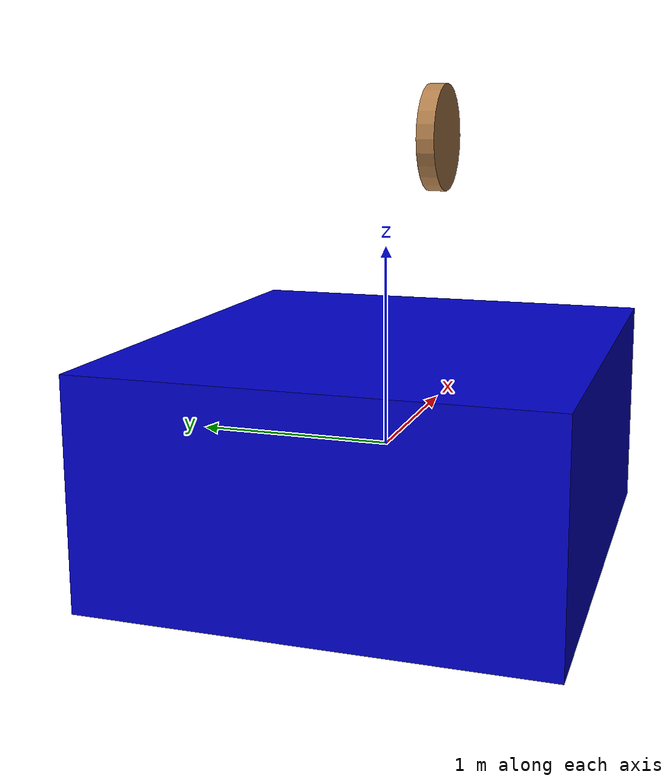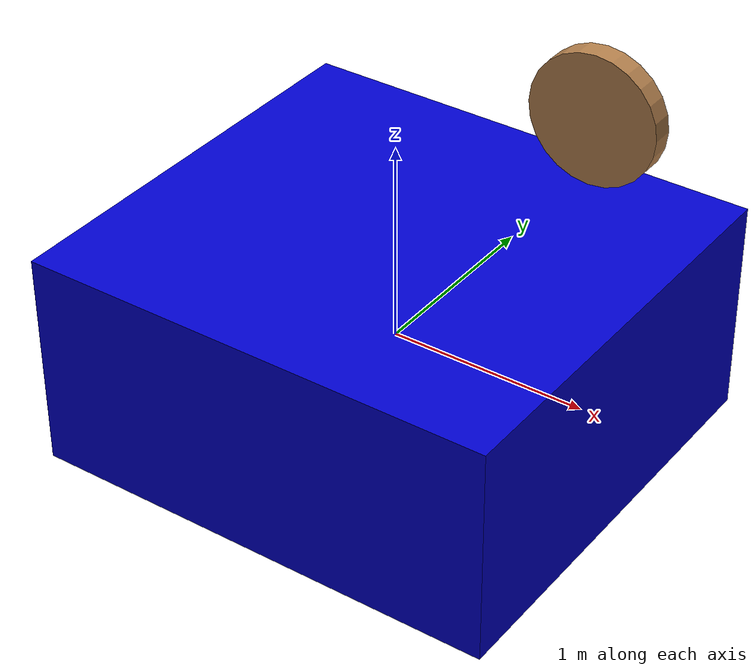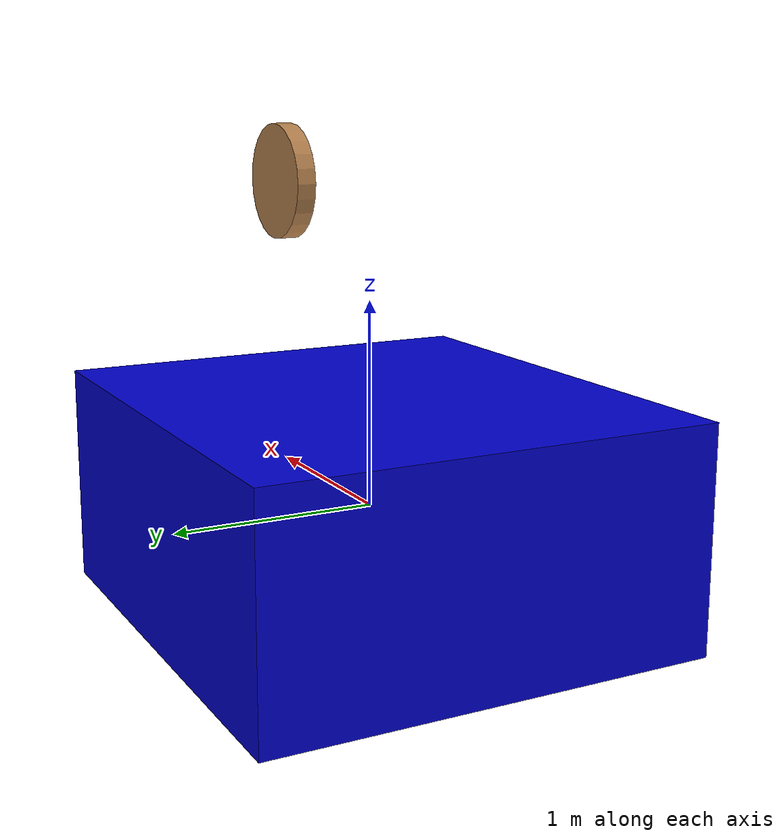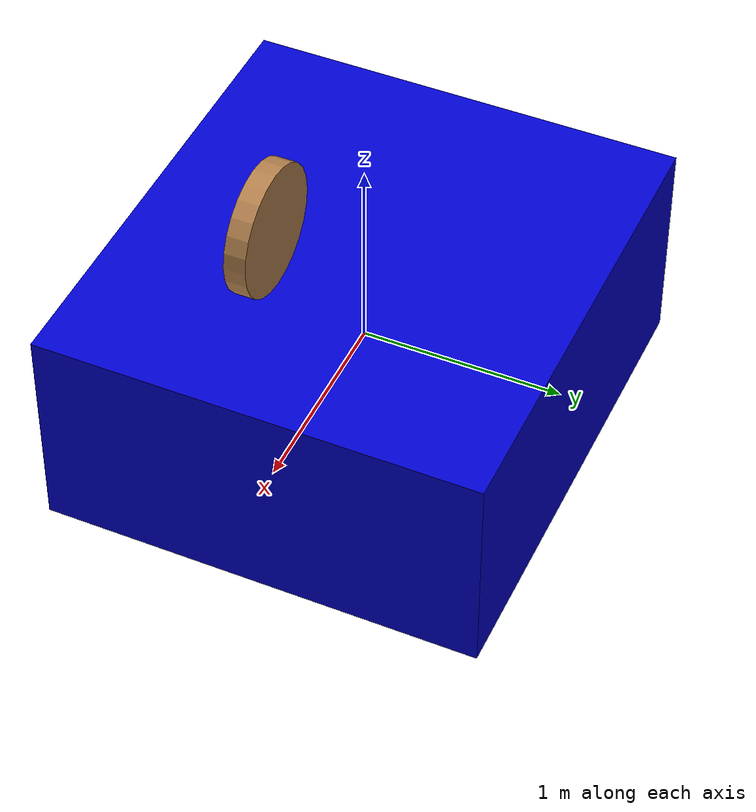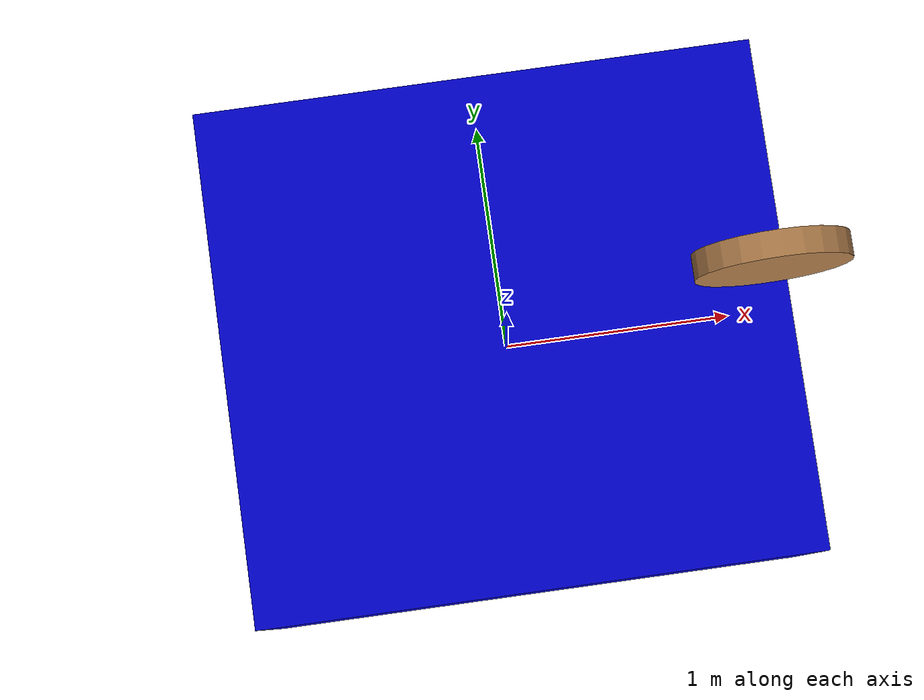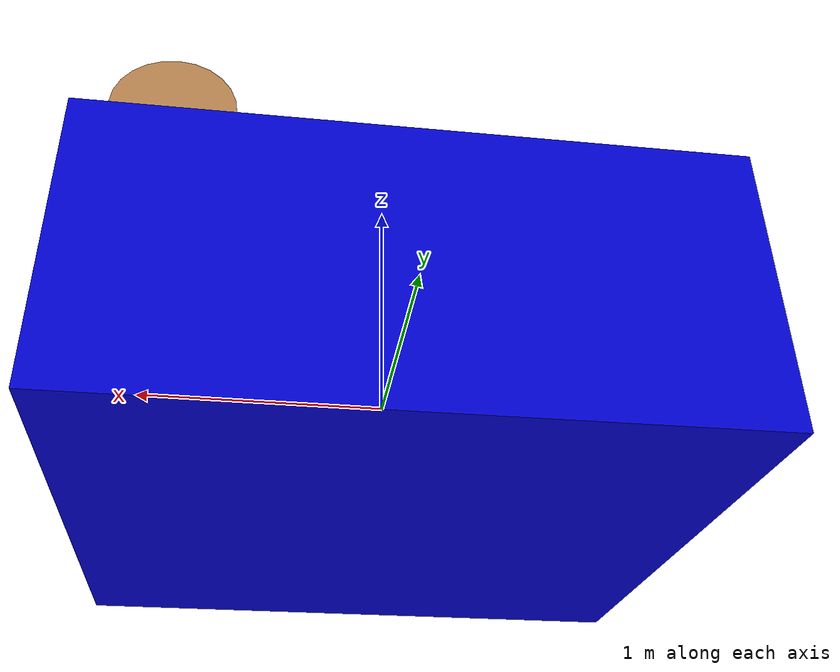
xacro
<?xml version="1.0"?>
<robot xmlns:xacro="http://www.ros.org/wiki/xacro" name="wheels">
  <xacro:property name='width' value='2.2' />
  <xacro:property name='length' value='2.4' />
  <xacro:property name='height' value='1.1' />

  <xacro:macro name="box_inertial" params="mass length width height">
  <inertial>
    <mass value="${mass}" />
    <inertia ixx="${mass*(height*height+width*width)/12}" ixy="0.0" ixz="0.0" iyy="${mass*(length*length+width*width)/12}" iyz="0.0" izz="${mass*(length*length+height*height)/12}" />
  </inertial>
  </xacro:macro>

  <material name="blue">
    <color rgba="0 0 0.8 1"/>
  </material>

  <link name="base_link">
    <visual>
      <geometry>
        <box size="0.01 0.01 0.01"/>
      </geometry>
    </visual>
  </link>

  <joint name="base_link_to_base" type="fixed">
    <parent link="base_link"/>
    <child link="base"/>
  </joint>

  <link name="base">
    <visual>
      <geometry>
        <box size="${length} ${width} ${height}"/>
      </geometry>
      <material name="blue"/>
      <origin xyz="0 0 0"/>
    </visual>
    <collision>
      <origin xyz="0 0 0"/>
      <geometry>
        <box size="${length} ${width} ${height}"/>
      </geometry>
    </collision>
    <xacro:box_inertial mass="2" length="${length}" width="${width}" height="${height}"/>
  </link>

  <xacro:macro name="null_inertial">
    <inertial>
      <mass value="0.001"/>
      <inertia ixx="0.001" ixy="0" ixz="0" iyy="0.001" iyz="0" izz="0.001"/>
    </inertial>
  </xacro:macro>

  <link name="axle_carrier">
    <xacro:null_inertial/>
  </link>

  <joint name="axle_suspension" type="fixed">
    <parent link="base"/>
    <child link="axle_carrier"/>
    <origin rpy="0 0 0"/>
    <axis xyz="1 1 0"/>
  </joint>

  <joint name="axle" type="continuous">
    <parent link="axle_carrier"/>
    <child link="wheel"/>
    <origin rpy="${pi / 2} 0 0"/>
    <axis xyz="0 1 0"/>
    <limit effort="10" velocity="10"/>
  </joint>

  <link name="wheel">
    <visual>
      <origin xyz="1 1.5 0"/>
      <geometry>
        <cylinder radius="0.3" length="0.1"/>
      </geometry>
      <material name="tire_mat"/>
    </visual>

    <collision>
      <origin xyz="0 1.5 0"/>
      <geometry>
        <cylinder radius="0.3" length="0.1"/>
      </geometry>
    </collision>
    <xacro:box_inertial mass="0.2" length="0.2" width="0.2" height="0.2"/>
  </link>

  <transmission name="axle_trans">
    <type>transmission_interface/SimpleTransmission</type>
    <joint name="axle">
      <hardwareInterface>hardware_interface/EffortJointInterface</hardwareInterface>
    </joint>
    <actuator name="axle_act">
      <hardwareInterface>hardware_interface/EffortJointInterface</hardwareInterface>
      <mechanicalReduction>1</mechanicalReduction>
    </actuator>
  </transmission>

  <gazebo reference="wheel">
    <mu1 value="200.0"/>
    <mu2 value="100.0"/>
    <kp value="10000000.0" />
    <kd value="1.0" />
    <material>Gazebo/Wood</material>
  </gazebo>

  <gazebo reference="base">
    <material>Gazebo/Orange</material>
  </gazebo>

  <gazebo reference="base_link">
    <material>Gazebo/Green</material>
  </gazebo>

  <gazebo>
    <plugin name="gazebo_ros_control" filename="libgazebo_ros_control.so">
      <robotNamespace>/</robotNamespace>
    </plugin>
  </gazebo>

</robot>
